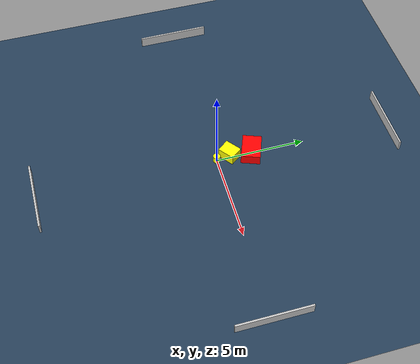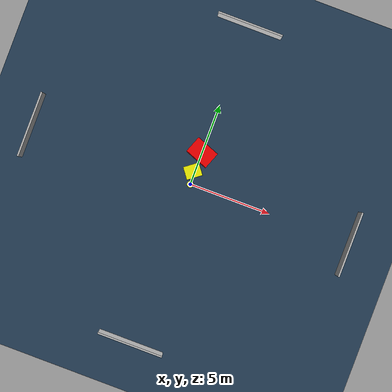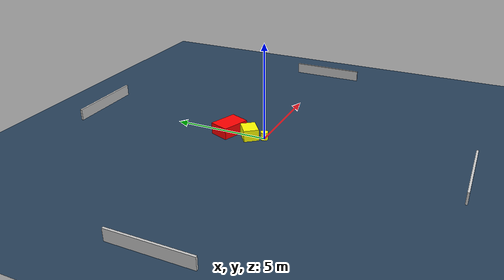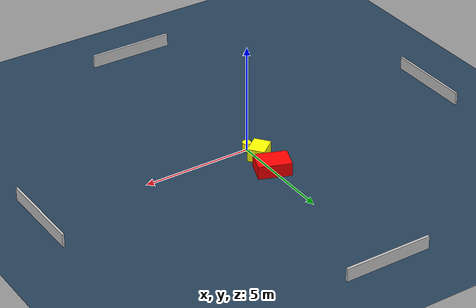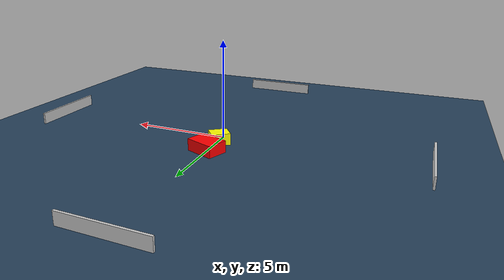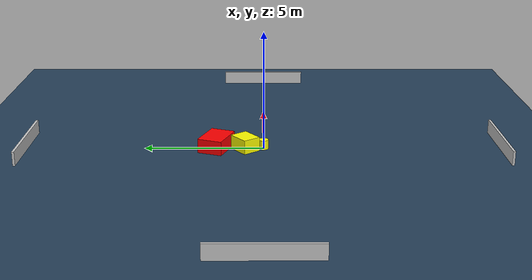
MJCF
<?xml version="1.0" ?>
<mujoco model="generated_environment">
  <option timestep="0.01" integrator="RK4" cone="elliptic"/>
  <default>
    <geom density="1"/>
  </default>
  <asset>
    <texture builtin="gradient" height="3072" name="skybox" rgb1="0.3 0.5 0.7" rgb2="0 0 0" type="skybox" width="512"/>
    <texture builtin="checker" height="300" name="groundplane" rgb1="0.2 0.3 0.4" rgb2="0.1 0.2 0.3" type="2d" width="300"/>
    <material name="groundplane" reflectance="0.2" texrepeat="5 5" texture="groundplane"/>
  </asset>
  <worldbody>
    <light dir="0 0 -1" directional="true" pos="0 0 1.5"/>
    <geom condim="3" friction="0.5 0.005 0.001" material="groundplane" name="floor" pos="0 0 0" size="0 0 0.05" type="plane"/>
    <body name="walls">
      <geom name="wall_1" condim="4" pos="-10.0 0.0 0.3" rgba="0.800000011920929 0.800000011920929 0.800000011920929 1.0" size="0.05 2.0 0.3" type="box"/>
      <geom name="wall_2" condim="4" pos="10.0 0.0 0.3" rgba="0.800000011920929 0.800000011920929 0.800000011920929 1.0" size="0.05 2.0 0.3" type="box"/>
      <geom name="wall_3" condim="4" pos="0.0 -10.0 0.3" rgba="0.800000011920929 0.800000011920929 0.800000011920929 1.0" size="2.0 0.05 0.3" type="box"/>
      <geom name="wall_4" condim="4" pos="0.0 10.0 0.3" rgba="0.800000011920929 0.800000011920929 0.800000011920929 1.0" size="2.0 0.05 0.3" type="box"/>
    </body>
    <body name="robot">
      <joint name="joint_x" type="slide" pos="0 0 0" axis="1 0 0"/>
      <joint name="joint_y" type="slide" pos="0 0 0" axis="0 1 0"/>
      <geom name="robot" type="cylinder" pos="0.0 0.0 0.2" size="0.2 0.2 0.0" mass="5.0" friction="1.0 0.005 0.0001" condim="4" rgba="1.0 1.0 0.0 1.0"/>
    </body>
    <body name="obstacle_1_movable">
      <geom name="obstacle_1_movable" condim="4" pos="-0.12969620839343313 0.7737224206833974 0.3" euler="0 0 307.2896194560148" friction="0.0 0.005 0.001" rgba="1.0 1.0 0.0 1.0" size="0.3872395846701663 0.47845512209567137 0.3" type="box" mass="0.1"/>
      <joint type="free"/>
    </body>
    <body name="obstacle_2_static">
      <geom name="obstacle_2_static" condim="4" pos="-0.002058093704032087 1.9884850545035635 0.3" euler="0 0 159.07800114895736" friction="0.0 0.005 0.001" rgba="1.0 0.0 0.0 1.0" size="0.743198599395616 0.5295069476006817 0.3" type="box"/>
    </body>
  </worldbody>
  <actuator>
    <motor name="actuator_x" joint="joint_x" gear="1" ctrlrange="-1 1"/>
    <motor name="actuator_y" joint="joint_y" gear="1" ctrlrange="-1 1"/>
  </actuator>
</mujoco>
